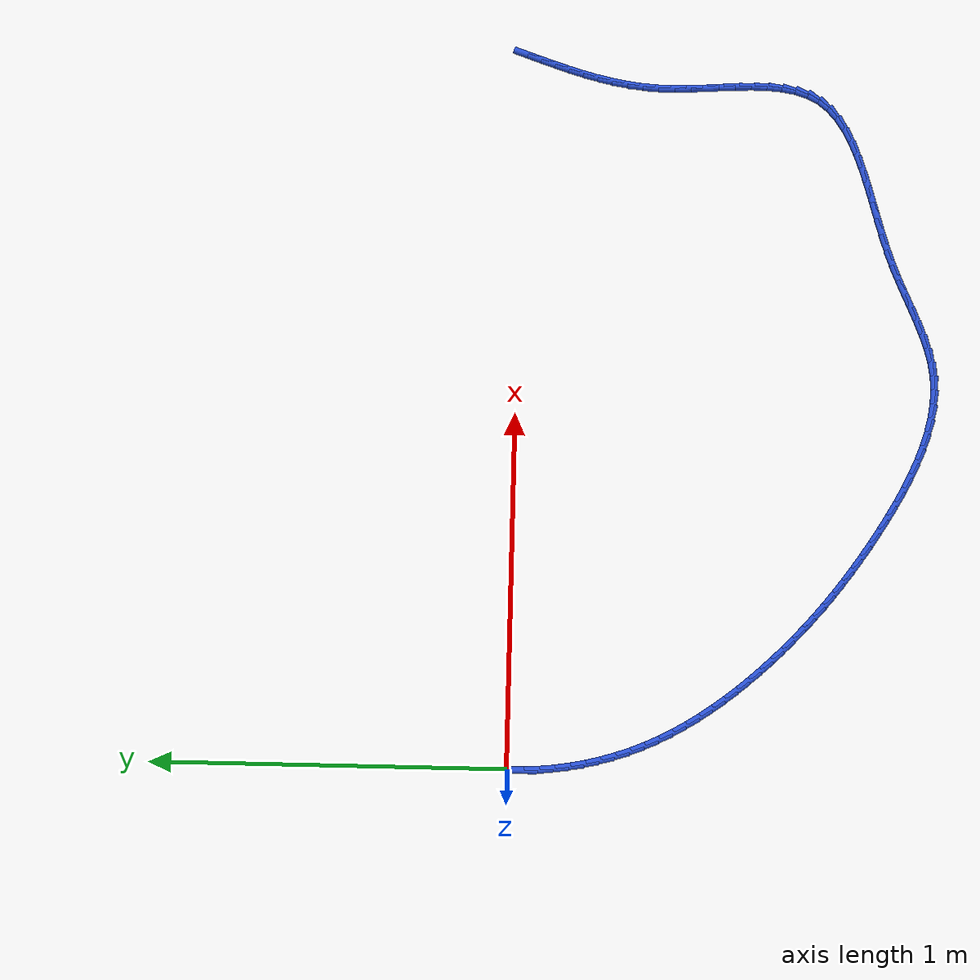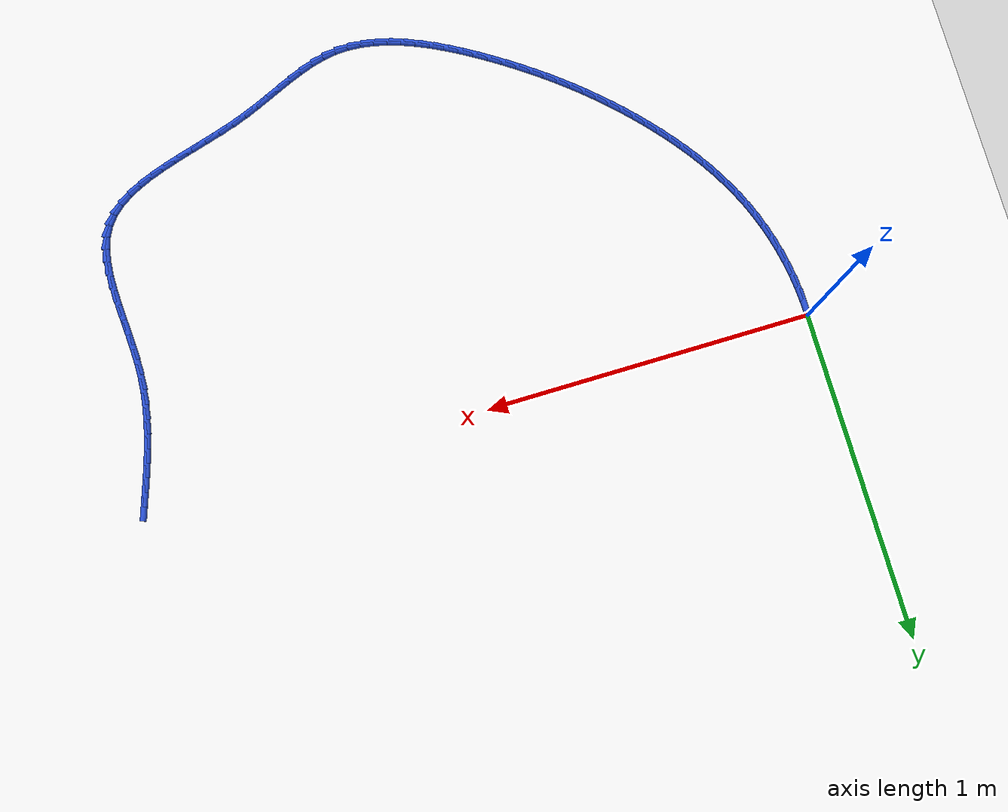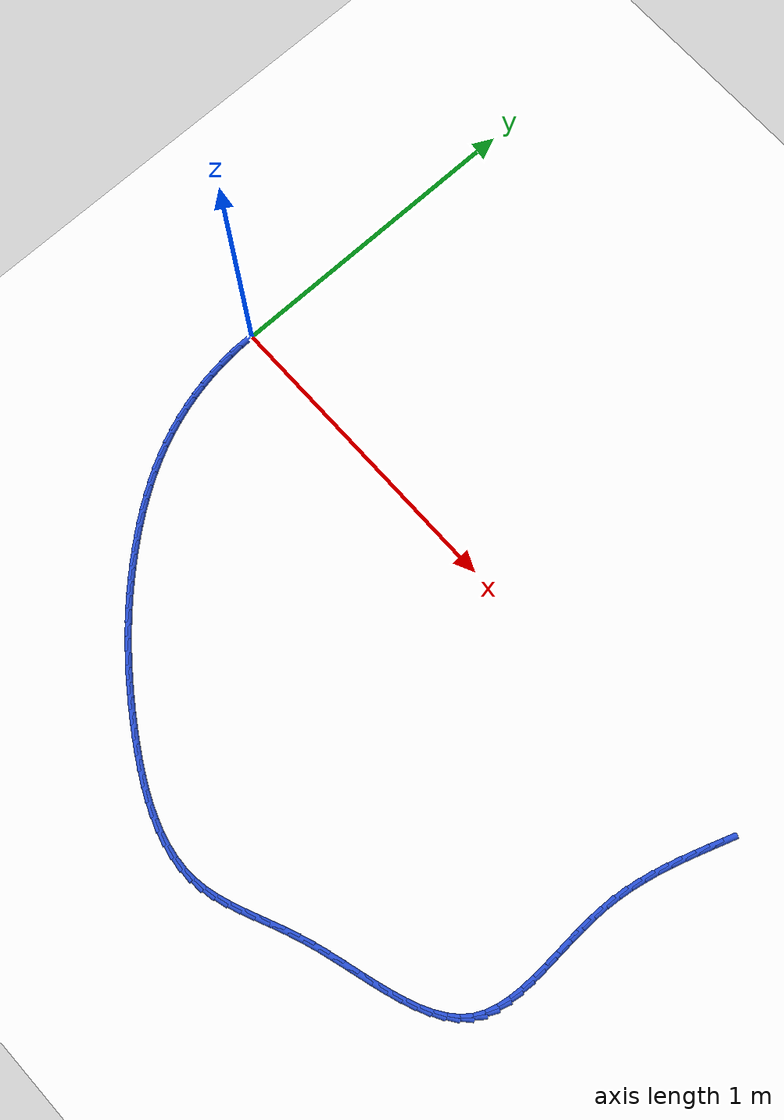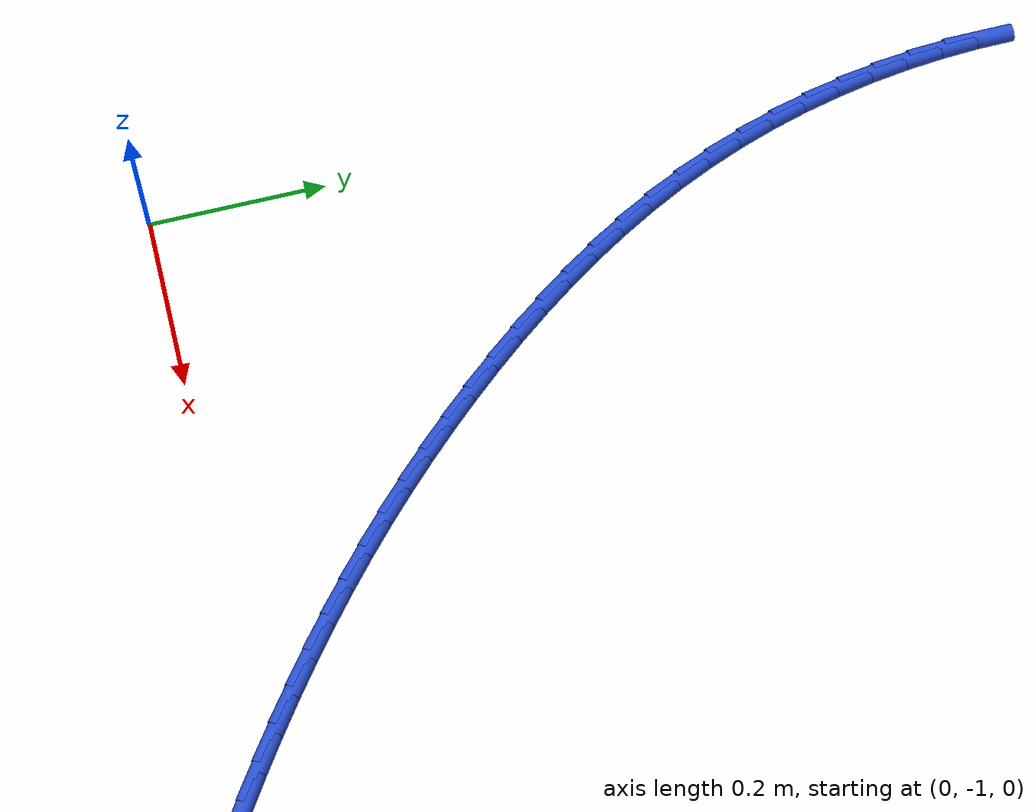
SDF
<sdf version="1.6">
 <world name="default">
  <model name="ground_plane">
   <static>1</static>
   <link name="link">
    <collision name="collision">
     <geometry><plane><normal>0 0 1</normal><size>100 100</size></plane></geometry>
     <surface><friction><ode><mu>100</mu><mu2>50</mu2></ode></friction></surface>
    </collision>
    <visual name="visual">
     <cast_shadows>0</cast_shadows>
     <geometry><plane><normal>0 0 1</normal><size>100 100</size></plane></geometry>
     <material>
      <script><uri>file://media/materials/scripts/gazebo.material</uri><name>Gazebo/WhiteGlow</name></script>
     </material>
    </visual>
   </link>
  </model>
  <model name="line">
   <link name="link_79">
    <pose>2.0497268249616245 -0.01200036930012709 0.01 0 1.57 1.2361086357804818</pose>
    <collision name="collision">
     <geometry><cylinder><radius>0.01</radius><length>0.08</length></cylinder></geometry>
    </collision>
    <visual name="visual">
     <material>
      <script><name>Gazebo/Blue</name><uri>file://media/materials/scripts/gazebo.material</uri></script>
     </material>
     <geometry><cylinder><radius>0.01</radius><length>0.08</length></cylinder></geometry>
    </visual>
   </link>
   <link name="link_80">
    <pose>2.0357409508427606 -0.05221612705626641 0.01 0 1.57 1.2421726312917123</pose>
    <collision name="collision">
     <geometry><cylinder><radius>0.01</radius><length>0.08</length></cylinder></geometry>
    </collision>
    <visual name="visual">
     <material>
      <script><name>Gazebo/Blue</name><uri>file://media/materials/scripts/gazebo.material</uri></script>
     </material>
     <geometry><cylinder><radius>0.01</radius><length>0.08</length></cylinder></geometry>
    </visual>
   </link>
   <link name="link_81">
    <pose>2.0219979243331703 -0.09251969786310299 0.01 0 1.57 1.2559934846705436</pose>
    <collision name="collision">
     <geometry><cylinder><radius>0.01</radius><length>0.08</length></cylinder></geometry>
    </collision>
    <visual name="visual">
     <material>
      <script><name>Gazebo/Blue</name><uri>file://media/materials/scripts/gazebo.material</uri></script>
     </material>
     <geometry><cylinder><radius>0.01</radius><length>0.08</length></cylinder></geometry>
    </visual>
   </link>
   <link name="link_82">
    <pose>2.0087993786013305 -0.1330518673805911 0.01 0 1.57 1.2775020403057513</pose>
    <collision name="collision">
     <geometry><cylinder><radius>0.01</radius><length>0.08</length></cylinder></geometry>
    </collision>
    <visual name="visual">
     <material>
      <script><name>Gazebo/Blue</name><uri>file://media/materials/scripts/gazebo.material</uri></script>
     </material>
     <geometry><cylinder><radius>0.01</radius><length>0.08</length></cylinder></geometry>
    </visual>
   </link>
   <link name="link_83">
    <pose>1.996446946815718 -0.1739534212686829 0.01 0 1.57 1.3065552213059184</pose>
    <collision name="collision">
     <geometry><cylinder><radius>0.01</radius><length>0.08</length></cylinder></geometry>
    </collision>
    <visual name="visual">
     <material>
      <script><name>Gazebo/Blue</name><uri>file://media/materials/scripts/gazebo.material</uri></script>
     </material>
     <geometry><cylinder><radius>0.01</radius><length>0.08</length></cylinder></geometry>
    </visual>
   </link>
   <link name="link_84">
    <pose>1.985242262144811 -0.2153651451873328 0.01 0 1.57 1.3429022885914026</pose>
    <collision name="collision">
     <geometry><cylinder><radius>0.01</radius><length>0.08</length></cylinder></geometry>
    </collision>
    <visual name="visual">
     <material>
      <script><name>Gazebo/Blue</name><uri>file://media/materials/scripts/gazebo.material</uri></script>
     </material>
     <geometry><cylinder><radius>0.01</radius><length>0.08</length></cylinder></geometry>
    </visual>
   </link>
   <link name="link_85">
    <pose>1.9754869577570868 -0.2574278247964944 0.01 0 1.57 1.386145318106704</pose>
    <collision name="collision">
     <geometry><cylinder><radius>0.01</radius><length>0.08</length></cylinder></geometry>
    </collision>
    <visual name="visual">
     <material>
      <script><name>Gazebo/Blue</name><uri>file://media/materials/scripts/gazebo.material</uri></script>
     </material>
     <geometry><cylinder><radius>0.01</radius><length>0.08</length></cylinder></geometry>
    </visual>
   </link>
   <link name="link_86">
    <pose>1.9674826668210235 -0.30028224575612134 0.01 0 1.57 1.4357014326984237</pose>
    <collision name="collision">
     <geometry><cylinder><radius>0.01</radius><length>0.08</length></cylinder></geometry>
    </collision>
    <visual name="visual">
     <material>
      <script><name>Gazebo/Blue</name><uri>file://media/materials/scripts/gazebo.material</uri></script>
     </material>
     <geometry><cylinder><radius>0.01</radius><length>0.08</length></cylinder></geometry>
    </visual>
   </link>
   <link name="link_87">
    <pose>1.9615310225050973 -0.34406919372616784 0.01 0 1.57 1.4907771042050664</pose>
    <collision name="collision">
     <geometry><cylinder><radius>0.01</radius><length>0.08</length></cylinder></geometry>
    </collision>
    <visual name="visual">
     <material>
      <script><name>Gazebo/Blue</name><uri>file://media/materials/scripts/gazebo.material</uri></script>
     </material>
     <geometry><cylinder><radius>0.01</radius><length>0.08</length></cylinder></geometry>
    </visual>
   </link>
   <link name="link_88">
    <pose>1.9579336579777877 -0.3889294543665863 0.01 0 1.57 1.5489056783955824</pose>
    <collision name="collision">
     <geometry><cylinder><radius>0.01</radius><length>0.08</length></cylinder></geometry>
    </collision>
    <visual name="visual">
     <material>
      <script><name>Gazebo/Blue</name><uri>file://media/materials/scripts/gazebo.material</uri></script>
     </material>
     <geometry><cylinder><radius>0.01</radius><length>0.08</length></cylinder></geometry>
    </visual>
   </link>
   <link name="link_89">
    <pose>1.9569257358877672 -0.43496560037629406 0.01 0 1.57 -1.5463260222264923</pose>
    <collision name="collision">
     <geometry><cylinder><radius>0.01</radius><length>0.08</length></cylinder></geometry>
    </collision>
    <visual name="visual">
     <material>
      <script><name>Gazebo/Blue</name><uri>file://media/materials/scripts/gazebo.material</uri></script>
     </material>
     <geometry><cylinder><radius>0.01</radius><length>0.08</length></cylinder></geometry>
    </visual>
   </link>
   <link name="link_90">
    <pose>1.958074370070317 -0.4818961526466922 0.01 0 1.57 -1.5183039544538628</pose>
    <collision name="collision">
     <geometry><cylinder><radius>0.01</radius><length>0.08</length></cylinder></geometry>
    </collision>
    <visual name="visual">
     <material>
      <script><name>Gazebo/Blue</name><uri>file://media/materials/scripts/gazebo.material</uri></script>
     </material>
     <geometry><cylinder><radius>0.01</radius><length>0.08</length></cylinder></geometry>
    </visual>
   </link>
   <link name="link_91">
    <pose>1.9605606758187923 -0.5292177269707027 0.01 0 1.57 -1.5073224955402336</pose>
    <collision name="collision">
     <geometry><cylinder><radius>0.01</radius><length>0.08</length></cylinder></geometry>
    </collision>
    <visual name="visual">
     <material>
      <script><name>Gazebo/Blue</name><uri>file://media/materials/scripts/gazebo.material</uri></script>
     </material>
     <geometry><cylinder><radius>0.01</radius><length>0.08</length></cylinder></geometry>
    </visual>
   </link>
   <link name="link_92">
    <pose>1.9635610850478649 -0.5764242467331305 0.01 0 1.57 -1.5130967395640473</pose>
    <collision name="collision">
     <geometry><cylinder><radius>0.01</radius><length>0.08</length></cylinder></geometry>
    </collision>
    <visual name="visual">
     <material>
      <script><name>Gazebo/Blue</name><uri>file://media/materials/scripts/gazebo.material</uri></script>
     </material>
     <geometry><cylinder><radius>0.01</radius><length>0.08</length></cylinder></geometry>
    </visual>
   </link>
   <link name="link_93">
    <pose>1.9662520296722064 -0.6230096353187775 0.01 0 1.57 -1.5365384132171003</pose>
    <collision name="collision">
     <geometry><cylinder><radius>0.01</radius><length>0.08</length></cylinder></geometry>
    </collision>
    <visual name="visual">
     <material>
      <script><name>Gazebo/Blue</name><uri>file://media/materials/scripts/gazebo.material</uri></script>
     </material>
     <geometry><cylinder><radius>0.01</radius><length>0.08</length></cylinder></geometry>
    </visual>
   </link>
   <link name="link_94">
    <pose>1.967809941606489 -0.6684678161124484 0.01 0 1.57 1.5616992638038028</pose>
    <collision name="collision">
     <geometry><cylinder><radius>0.01</radius><length>0.08</length></cylinder></geometry>
    </collision>
    <visual name="visual">
     <material>
      <script><name>Gazebo/Blue</name><uri>file://media/materials/scripts/gazebo.material</uri></script>
     </material>
     <geometry><cylinder><radius>0.01</radius><length>0.08</length></cylinder></geometry>
    </visual>
   </link>
   <link name="link_95">
    <pose>1.9674112527653838 -0.7122927124989471 0.01 0 1.57 1.4946855825788532</pose>
    <collision name="collision">
     <geometry><cylinder><radius>0.01</radius><length>0.08</length></cylinder></geometry>
    </collision>
    <visual name="visual">
     <material>
      <script><name>Gazebo/Blue</name><uri>file://media/materials/scripts/gazebo.material</uri></script>
     </material>
     <geometry><cylinder><radius>0.01</radius><length>0.08</length></cylinder></geometry>
    </visual>
   </link>
   <link name="link_96">
    <pose>1.964232395063564 -0.7539782478630784 0.01 0 1.57 1.3987792472565486</pose>
    <collision name="collision">
     <geometry><cylinder><radius>0.01</radius><length>0.08</length></cylinder></geometry>
    </collision>
    <visual name="visual">
     <material>
      <script><name>Gazebo/Blue</name><uri>file://media/materials/scripts/gazebo.material</uri></script>
     </material>
     <geometry><cylinder><radius>0.01</radius><length>0.08</length></cylinder></geometry>
    </visual>
   </link>
   <link name="link_97">
    <pose>1.9574498004157002 -0.7930183455896442 0.01 0 1.57 1.2680455643195303</pose>
    <collision name="collision">
     <geometry><cylinder><radius>0.01</radius><length>0.08</length></cylinder></geometry>
    </collision>
    <visual name="visual">
     <material>
      <script><name>Gazebo/Blue</name><uri>file://media/materials/scripts/gazebo.material</uri></script>
     </material>
     <geometry><cylinder><radius>0.01</radius><length>0.08</length></cylinder></geometry>
    </visual>
   </link>
   <link name="link_98">
    <pose>1.9462399007364652 -0.8289069290634496 0.01 0 1.57 1.0986265378931823</pose>
    <collision name="collision">
     <geometry><cylinder><radius>0.01</radius><length>0.08</length></cylinder></geometry>
    </collision>
    <visual name="visual">
     <material>
      <script><name>Gazebo/Blue</name><uri>file://media/materials/scripts/gazebo.material</uri></script>
     </material>
     <geometry><cylinder><radius>0.01</radius><length>0.08</length></cylinder></geometry>
    </visual>
   </link>
   <link name="link_99">
    <pose>1.9297794630309748 -0.8611381484666083 0.01 0 1.57 0.9054769072068747</pose>
    <collision name="collision">
     <geometry><cylinder><radius>0.01</radius><length>0.08</length></cylinder></geometry>
    </collision>
    <visual name="visual">
     <material>
      <script><name>Gazebo/Blue</name><uri>file://media/materials/scripts/gazebo.material</uri></script>
     </material>
     <geometry><cylinder><radius>0.01</radius><length>0.08</length></cylinder></geometry>
    </visual>
   </link>
   <link name="link_100">
    <pose>1.9075785222536619 -0.8894317177826276 0.01 0 1.57 0.7327894079717805</pose>
    <collision name="collision">
     <geometry><cylinder><radius>0.01</radius><length>0.08</length></cylinder></geometry>
    </collision>
    <visual name="visual">
     <material>
      <script><name>Gazebo/Blue</name><uri>file://media/materials/scripts/gazebo.material</uri></script>
     </material>
     <geometry><cylinder><radius>0.01</radius><length>0.08</length></cylinder></geometry>
    </visual>
   </link>
   <link name="link_101">
    <pose>1.8801055951007464 -0.9141560745992121 0.01 0 1.57 0.5930758423264373</pose>
    <collision name="collision">
     <geometry><cylinder><radius>0.01</radius><length>0.08</length></cylinder></geometry>
    </collision>
    <visual name="visual">
     <material>
      <script><name>Gazebo/Blue</name><uri>file://media/materials/scripts/gazebo.material</uri></script>
     </material>
     <geometry><cylinder><radius>0.01</radius><length>0.08</length></cylinder></geometry>
    </visual>
   </link>
   <link name="link_102">
    <pose>1.8480004560476513 -0.9357955679074086 0.01 0 1.57 0.4853507821232089</pose>
    <collision name="collision">
     <geometry><cylinder><radius>0.01</radius><length>0.08</length></cylinder></geometry>
    </collision>
    <visual name="visual">
     <material>
      <script><name>Gazebo/Blue</name><uri>file://media/materials/scripts/gazebo.material</uri></script>
     </material>
     <geometry><cylinder><radius>0.01</radius><length>0.08</length></cylinder></geometry>
    </visual>
   </link>
   <link name="link_103">
    <pose>1.8119028795698007 -0.9548345466982672 0.01 0 1.57 0.40522512327209276</pose>
    <collision name="collision">
     <geometry><cylinder><radius>0.01</radius><length>0.08</length></cylinder></geometry>
    </collision>
    <visual name="visual">
     <material>
      <script><name>Gazebo/Blue</name><uri>file://media/materials/scripts/gazebo.material</uri></script>
     </material>
     <geometry><cylinder><radius>0.01</radius><length>0.08</length></cylinder></geometry>
    </visual>
   </link>
   <link name="link_104">
    <pose>1.7724526401426157 -0.9717573599628356 0.01 0 1.57 0.3479108449966303</pose>
    <collision name="collision">
     <geometry><cylinder><radius>0.01</radius><length>0.08</length></cylinder></geometry>
    </collision>
    <visual name="visual">
     <material>
      <script><name>Gazebo/Blue</name><uri>file://media/materials/scripts/gazebo.material</uri></script>
     </material>
     <geometry><cylinder><radius>0.01</radius><length>0.08</length></cylinder></geometry>
    </visual>
   </link>
   <link name="link_105">
    <pose>1.7302895122415205 -0.9870483566921632 0.01 0 1.57 0.3094554530510217</pose>
    <collision name="collision">
     <geometry><cylinder><radius>0.01</radius><length>0.08</length></cylinder></geometry>
    </collision>
    <visual name="visual">
     <material>
      <script><name>Gazebo/Blue</name><uri>file://media/materials/scripts/gazebo.material</uri></script>
     </material>
     <geometry><cylinder><radius>0.01</radius><length>0.08</length></cylinder></geometry>
    </visual>
   </link>
   <link name="link_106">
    <pose>1.6860532703419366 -1.0011918858772981 0.01 0 1.57 0.28702215515041535</pose>
    <collision name="collision">
     <geometry><cylinder><radius>0.01</radius><length>0.08</length></cylinder></geometry>
    </collision>
    <visual name="visual">
     <material>
      <script><name>Gazebo/Blue</name><uri>file://media/materials/scripts/gazebo.material</uri></script>
     </material>
     <geometry><cylinder><radius>0.01</radius><length>0.08</length></cylinder></geometry>
    </visual>
   </link>
   <link name="link_107">
    <pose>1.640383688919288 -1.0146722965092885 0.01 0 1.57 0.2788260111481397</pose>
    <collision name="collision">
     <geometry><cylinder><radius>0.01</radius><length>0.08</length></cylinder></geometry>
    </collision>
    <visual name="visual">
     <material>
      <script><name>Gazebo/Blue</name><uri>file://media/materials/scripts/gazebo.material</uri></script>
     </material>
     <geometry><cylinder><radius>0.01</radius><length>0.08</length></cylinder></geometry>
    </visual>
   </link>
   <link name="link_108">
    <pose>1.5939205424489975 -1.0279739375791834 0.01 0 1.57 0.28400392856954687</pose>
    <collision name="collision">
     <geometry><cylinder><radius>0.01</radius><length>0.08</length></cylinder></geometry>
    </collision>
    <visual name="visual">
     <material>
      <script><name>Gazebo/Blue</name><uri>file://media/materials/scripts/gazebo.material</uri></script>
     </material>
     <geometry><cylinder><radius>0.01</radius><length>0.08</length></cylinder></geometry>
    </visual>
   </link>
   <link name="link_109">
    <pose>1.5473036054064877 -1.0415811580780314 0.01 0 1.57 0.3025140622665731</pose>
    <collision name="collision">
     <geometry><cylinder><radius>0.01</radius><length>0.08</length></cylinder></geometry>
    </collision>
    <visual name="visual">
     <material>
      <script><name>Gazebo/Blue</name><uri>file://media/materials/scripts/gazebo.material</uri></script>
     </material>
     <geometry><cylinder><radius>0.01</radius><length>0.08</length></cylinder></geometry>
    </visual>
   </link>
   <link name="link_110">
    <pose>1.501172652267181 -1.0559783069968807 0.01 0 1.57 0.3350819967153817</pose>
    <collision name="collision">
     <geometry><cylinder><radius>0.01</radius><length>0.08</length></cylinder></geometry>
    </collision>
    <visual name="visual">
     <material>
      <script><name>Gazebo/Blue</name><uri>file://media/materials/scripts/gazebo.material</uri></script>
     </material>
     <geometry><cylinder><radius>0.01</radius><length>0.08</length></cylinder></geometry>
    </visual>
   </link>
   <link name="link_111">
    <pose>1.456167440013068 -1.071649709277705 0.01 0 1.57 0.37684474431683196</pose>
    <collision name="collision">
     <geometry><cylinder><radius>0.01</radius><length>0.08</length></cylinder></geometry>
    </collision>
    <visual name="visual">
     <material>
      <script><name>Gazebo/Blue</name><uri>file://media/materials/scripts/gazebo.material</uri></script>
     </material>
     <geometry><cylinder><radius>0.01</radius><length>0.08</length></cylinder></geometry>
    </visual>
   </link>
   <link name="link_112">
    <pose>1.4127484055918673 -1.0888331698536686 0.01 0 1.57 0.4065545158587108</pose>
    <collision name="collision">
     <geometry><cylinder><radius>0.01</radius><length>0.08</length></cylinder></geometry>
    </collision>
    <visual name="visual">
     <material>
      <script><name>Gazebo/Blue</name><uri>file://media/materials/scripts/gazebo.material</uri></script>
     </material>
     <geometry><cylinder><radius>0.01</radius><length>0.08</length></cylinder></geometry>
    </visual>
   </link>
   <link name="link_113">
    <pose>1.3707551424612534 -1.106912989791207 0.01 0 1.57 0.41852942974158885</pose>
    <collision name="collision">
     <geometry><cylinder><radius>0.01</radius><length>0.08</length></cylinder></geometry>
    </collision>
    <visual name="visual">
     <material>
      <script><name>Gazebo/Blue</name><uri>file://media/materials/scripts/gazebo.material</uri></script>
     </material>
     <geometry><cylinder><radius>0.01</radius><length>0.08</length></cylinder></geometry>
    </visual>
   </link>
   <link name="link_114">
    <pose>1.3298929755044495 -1.1250888845900022 0.01 0 1.57 0.4115801712459198</pose>
    <collision name="collision">
     <geometry><cylinder><radius>0.01</radius><length>0.08</length></cylinder></geometry>
    </collision>
    <visual name="visual">
     <material>
      <script><name>Gazebo/Blue</name><uri>file://media/materials/scripts/gazebo.material</uri></script>
     </material>
     <geometry><cylinder><radius>0.01</radius><length>0.08</length></cylinder></geometry>
    </visual>
   </link>
   <link name="link_115">
    <pose>1.2898672296046791 -1.1425605697497383 0.01 0 1.57 0.3842907000123619</pose>
    <collision name="collision">
     <geometry><cylinder><radius>0.01</radius><length>0.08</length></cylinder></geometry>
    </collision>
    <visual name="visual">
     <material>
      <script><name>Gazebo/Blue</name><uri>file://media/materials/scripts/gazebo.material</uri></script>
     </material>
     <geometry><cylinder><radius>0.01</radius><length>0.08</length></cylinder></geometry>
    </visual>
   </link>
   <link name="link_116">
    <pose>1.2503832296451658 -1.158527760770097 0.01 0 1.57 0.3350729402093349</pose>
    <collision name="collision">
     <geometry><cylinder><radius>0.01</radius><length>0.08</length></cylinder></geometry>
    </collision>
    <visual name="visual">
     <material>
      <script><name>Gazebo/Blue</name><uri>file://media/materials/scripts/gazebo.material</uri></script>
     </material>
     <geometry><cylinder><radius>0.01</radius><length>0.08</length></cylinder></geometry>
    </visual>
   </link>
   <link name="link_117">
    <pose>1.2111463005091336 -1.1721901731507611 0.01 0 1.57 0.26253763862229756</pose>
    <collision name="collision">
     <geometry><cylinder><radius>0.01</radius><length>0.08</length></cylinder></geometry>
    </collision>
    <visual name="visual">
     <material>
      <script><name>Gazebo/Blue</name><uri>file://media/materials/scripts/gazebo.material</uri></script>
     </material>
     <geometry><cylinder><radius>0.01</radius><length>0.08</length></cylinder></geometry>
    </visual>
   </link>
   <link name="link_118">
    <pose>1.1718617670798057 -1.1827475223914132 0.01 0 1.57 0.16631554159417422</pose>
    <collision name="collision">
     <geometry><cylinder><radius>0.01</radius><length>0.08</length></cylinder></geometry>
    </collision>
    <visual name="visual">
     <material>
      <script><name>Gazebo/Blue</name><uri>file://media/materials/scripts/gazebo.material</uri></script>
     </material>
     <geometry><cylinder><radius>0.01</radius><length>0.08</length></cylinder></geometry>
    </visual>
   </link>
   <link name="link_119">
    <pose>1.1322349542404058 -1.1893995239917365 0.01 0 1.57 0.05184714131324039</pose>
    <collision name="collision">
     <geometry><cylinder><radius>0.01</radius><length>0.08</length></cylinder></geometry>
    </collision>
    <visual name="visual">
     <material>
      <script><name>Gazebo/Blue</name><uri>file://media/materials/scripts/gazebo.material</uri></script>
     </material>
     <geometry><cylinder><radius>0.01</radius><length>0.08</length></cylinder></geometry>
    </visual>
   </link>
   <link name="link_120">
    <pose>1.0920232943388382 -1.1914862537378008 0.01 0 1.57 -0.05762549212249572</pose>
    <collision name="collision">
     <geometry><cylinder><radius>0.01</radius><length>0.08</length></cylinder></geometry>
    </collision>
    <visual name="visual">
     <material>
      <script><name>Gazebo/Blue</name><uri>file://media/materials/scripts/gazebo.material</uri></script>
     </material>
     <geometry><cylinder><radius>0.01</radius><length>0.08</length></cylinder></geometry>
    </visual>
   </link>
   <link name="link_121">
    <pose>1.0512766909245692 -1.1891356081600293 0.01 0 1.57 -0.15402195144967754</pose>
    <collision name="collision">
     <geometry><cylinder><radius>0.01</radius><length>0.08</length></cylinder></geometry>
    </collision>
    <visual name="visual">
     <material>
      <script><name>Gazebo/Blue</name><uri>file://media/materials/scripts/gazebo.material</uri></script>
     </material>
     <geometry><cylinder><radius>0.01</radius><length>0.08</length></cylinder></geometry>
    </visual>
   </link>
   <link name="link_122">
    <pose>1.0101470194503865 -1.1827501623908625 0.01 0 1.57 -0.23761983702317604</pose>
    <collision name="collision">
     <geometry><cylinder><radius>0.01</radius><length>0.08</length></cylinder></geometry>
    </collision>
    <visual name="visual">
     <material>
      <script><name>Gazebo/Blue</name><uri>file://media/materials/scripts/gazebo.material</uri></script>
     </material>
     <geometry><cylinder><radius>0.01</radius><length>0.08</length></cylinder></geometry>
    </visual>
   </link>
   <link name="link_123">
    <pose>0.968786260261987 -1.1727327741095785 0.01 0 1.57 -0.30939023486036876</pose>
    <collision name="collision">
     <geometry><cylinder><radius>0.01</radius><length>0.08</length></cylinder></geometry>
    </collision>
    <visual name="visual">
     <material>
      <script><name>Gazebo/Blue</name><uri>file://media/materials/scripts/gazebo.material</uri></script>
     </material>
     <geometry><cylinder><radius>0.01</radius><length>0.08</length></cylinder></geometry>
    </visual>
   </link>
   <link name="link_124">
    <pose>0.9273463937050702 -1.1594863009954544 0.01 0 1.57 -0.37058753692792934</pose>
    <collision name="collision">
     <geometry><cylinder><radius>0.01</radius><length>0.08</length></cylinder></geometry>
    </collision>
    <visual name="visual">
     <material>
      <script><name>Gazebo/Blue</name><uri>file://media/materials/scripts/gazebo.material</uri></script>
     </material>
     <geometry><cylinder><radius>0.01</radius><length>0.08</length></cylinder></geometry>
    </visual>
   </link>
   <link name="link_125">
    <pose>0.8859794001253343 -1.143413600727767 0.01 0 1.57 -0.4224921907969186</pose>
    <collision name="collision">
     <geometry><cylinder><radius>0.01</radius><length>0.08</length></cylinder></geometry>
    </collision>
    <visual name="visual">
     <material>
      <script><name>Gazebo/Blue</name><uri>file://media/materials/scripts/gazebo.material</uri></script>
     </material>
     <geometry><cylinder><radius>0.01</radius><length>0.08</length></cylinder></geometry>
    </visual>
   </link>
   <link name="link_126">
    <pose>0.844837259868477 -1.1249175309857937 0.01 0 1.57 -0.4662724324590634</pose>
    <collision name="collision">
     <geometry><cylinder><radius>0.01</radius><length>0.08</length></cylinder></geometry>
    </collision>
    <visual name="visual">
     <material>
      <script><name>Gazebo/Blue</name><uri>file://media/materials/scripts/gazebo.material</uri></script>
     </material>
     <geometry><cylinder><radius>0.01</radius><length>0.08</length></cylinder></geometry>
    </visual>
   </link>
   <link name="link_127">
    <pose>0.8040719532801989 -1.1044009494488127 0.01 0 1.57 -0.5029226749881721</pose>
    <collision name="collision">
     <geometry><cylinder><radius>0.01</radius><length>0.08</length></cylinder></geometry>
    </collision>
    <visual name="visual">
     <material>
      <script><name>Gazebo/Blue</name><uri>file://media/materials/scripts/gazebo.material</uri></script>
     </material>
     <geometry><cylinder><radius>0.01</radius><length>0.08</length></cylinder></geometry>
    </visual>
   </link>
   <link name="link_128">
    <pose>0.7638354607061972 -1.0822667137961002 0.01 0 1.57 -0.5332435570540376</pose>
    <collision name="collision">
     <geometry><cylinder><radius>0.01</radius><length>0.08</length></cylinder></geometry>
    </collision>
    <visual name="visual">
     <material>
      <script><name>Gazebo/Blue</name><uri>file://media/materials/scripts/gazebo.material</uri></script>
     </material>
     <geometry><cylinder><radius>0.01</radius><length>0.08</length></cylinder></geometry>
    </visual>
   </link>
   <link name="link_129">
    <pose>0.7242797624921711 -1.0589176817069343 0.01 0 1.57 -0.5578402358422295</pose>
    <collision name="collision">
     <geometry><cylinder><radius>0.01</radius><length>0.08</length></cylinder></geometry>
    </collision>
    <visual name="visual">
     <material>
      <script><name>Gazebo/Blue</name><uri>file://media/materials/scripts/gazebo.material</uri></script>
     </material>
     <geometry><cylinder><radius>0.01</radius><length>0.08</length></cylinder></geometry>
    </visual>
   </link>
   <link name="link_130">
    <pose>0.685556838983819 -1.034756710860592 0.01 0 1.57 -0.5778277313078821</pose>
    <collision name="collision">
     <geometry><cylinder><radius>0.01</radius><length>0.08</length></cylinder></geometry>
    </collision>
    <visual name="visual">
     <material>
      <script><name>Gazebo/Blue</name><uri>file://media/materials/scripts/gazebo.material</uri></script>
     </material>
     <geometry><cylinder><radius>0.01</radius><length>0.08</length></cylinder></geometry>
    </visual>
   </link>
   <link name="link_131">
    <pose>0.6477971692041742 -1.0101348328217734 0.01 0 1.57 -0.5973405971663324</pose>
    <collision name="collision">
     <geometry><cylinder><radius>0.01</radius><length>0.08</length></cylinder></geometry>
    </collision>
    <visual name="visual">
     <material>
      <script><name>Gazebo/Blue</name><uri>file://media/materials/scripts/gazebo.material</uri></script>
     </material>
     <geometry><cylinder><radius>0.01</radius><length>0.08</length></cylinder></geometry>
    </visual>
   </link>
   <link name="link_132">
    <pose>0.6110099262151376 -0.9851106870666252 0.01 0 1.57 -0.6177402935241718</pose>
    <collision name="collision">
     <geometry><cylinder><radius>0.01</radius><length>0.08</length></cylinder></geometry>
    </collision>
    <visual name="visual">
     <material>
      <script><name>Gazebo/Blue</name><uri>file://media/materials/scripts/gazebo.material</uri></script>
     </material>
     <geometry><cylinder><radius>0.01</radius><length>0.08</length></cylinder></geometry>
    </visual>
   </link>
   <link name="link_133">
    <pose>0.5751617819496699 -0.9596404696815363 0.01 0 1.57 -0.6389688836511638</pose>
    <collision name="collision">
     <geometry><cylinder><radius>0.01</radius><length>0.08</length></cylinder></geometry>
    </collision>
    <visual name="visual">
     <material>
      <script><name>Gazebo/Blue</name><uri>file://media/materials/scripts/gazebo.material</uri></script>
     </material>
     <geometry><cylinder><radius>0.01</radius><length>0.08</length></cylinder></geometry>
    </visual>
   </link>
   <link name="link_134">
    <pose>0.5402193628287019 -0.9336802670521235 0.01 0 1.57 -0.6609546493605363</pose>
    <collision name="collision">
     <geometry><cylinder><radius>0.01</radius><length>0.08</length></cylinder></geometry>
    </collision>
    <visual name="visual">
     <material>
      <script><name>Gazebo/Blue</name><uri>file://media/materials/scripts/gazebo.material</uri></script>
     </material>
     <geometry><cylinder><radius>0.01</radius><length>0.08</length></cylinder></geometry>
    </visual>
   </link>
   <link name="link_135">
    <pose>0.5061492952731639 -0.9071861655640038 0.01 0 1.57 -0.683613993094037</pose>
    <collision name="collision">
     <geometry><cylinder><radius>0.01</radius><length>0.08</length></cylinder></geometry>
    </collision>
    <visual name="visual">
     <material>
      <script><name>Gazebo/Blue</name><uri>file://media/materials/scripts/gazebo.material</uri></script>
     </material>
     <geometry><cylinder><radius>0.01</radius><length>0.08</length></cylinder></geometry>
    </visual>
   </link>
   <link name="link_136">
    <pose>0.4729182057039861 -0.8801142516027931 0.01 0 1.57 -0.70685227436735</pose>
    <collision name="collision">
     <geometry><cylinder><radius>0.01</radius><length>0.08</length></cylinder></geometry>
    </collision>
    <visual name="visual">
     <material>
      <script><name>Gazebo/Blue</name><uri>file://media/materials/scripts/gazebo.material</uri></script>
     </material>
     <geometry><cylinder><radius>0.01</radius><length>0.08</length></cylinder></geometry>
    </visual>
   </link>
   <link name="link_137">
    <pose>0.44049272054210065 -0.85242061155411 0.01 0 1.57 -0.7305650743467734</pose>
    <collision name="collision">
     <geometry><cylinder><radius>0.01</radius><length>0.08</length></cylinder></geometry>
    </collision>
    <visual name="visual">
     <material>
      <script><name>Gazebo/Blue</name><uri>file://media/materials/scripts/gazebo.material</uri></script>
     </material>
     <geometry><cylinder><radius>0.01</radius><length>0.08</length></cylinder></geometry>
    </visual>
   </link>
   <link name="link_138">
    <pose>0.4088394662084375 -0.8240613318035703 0.01 0 1.57 -0.7546398670581096</pose>
    <collision name="collision">
     <geometry><cylinder><radius>0.01</radius><length>0.08</length></cylinder></geometry>
    </collision>
    <visual name="visual">
     <material>
      <script><name>Gazebo/Blue</name><uri>file://media/materials/scripts/gazebo.material</uri></script>
     </material>
     <geometry><cylinder><radius>0.01</radius><length>0.08</length></cylinder></geometry>
    </visual>
   </link>
   <link name="link_139">
    <pose>0.3779250691239275 -0.7949924987367916 0.01 0 1.57 -0.7789580458303992</pose>
    <collision name="collision">
     <geometry><cylinder><radius>0.01</radius><length>0.08</length></cylinder></geometry>
    </collision>
    <visual name="visual">
     <material>
      <script><name>Gazebo/Blue</name><uri>file://media/materials/scripts/gazebo.material</uri></script>
     </material>
     <geometry><cylinder><radius>0.01</radius><length>0.08</length></cylinder></geometry>
    </visual>
   </link>
   <link name="link_140">
    <pose>0.3477161557095012 -0.7651701987393901 0.01 0 1.57 -0.8033972253162687</pose>
    <collision name="collision">
     <geometry><cylinder><radius>0.01</radius><length>0.08</length></cylinder></geometry>
    </collision>
    <visual name="visual">
     <material>
      <script><name>Gazebo/Blue</name><uri>file://media/materials/scripts/gazebo.material</uri></script>
     </material>
     <geometry><cylinder><radius>0.01</radius><length>0.08</length></cylinder></geometry>
    </visual>
   </link>
   <link name="link_141">
    <pose>0.3181793523860891 -0.7345505181969828 0.01 0 1.57 -0.8278345228896987</pose>
    <collision name="collision">
     <geometry><cylinder><radius>0.01</radius><length>0.08</length></cylinder></geometry>
    </collision>
    <visual name="visual">
     <material>
      <script><name>Gazebo/Blue</name><uri>file://media/materials/scripts/gazebo.material</uri></script>
     </material>
     <geometry><cylinder><radius>0.01</radius><length>0.08</length></cylinder></geometry>
    </visual>
   </link>
   <link name="link_142">
    <pose>0.2892813453032321 -0.703089557583985 0.01 0 1.57 -0.8527351970703414</pose>
    <collision name="collision">
     <geometry><cylinder><radius>0.01</radius><length>0.08</length></cylinder></geometry>
    </collision>
    <visual name="visual">
     <material>
      <script><name>Gazebo/Blue</name><uri>file://media/materials/scripts/gazebo.material</uri></script>
     </material>
     <geometry><cylinder><radius>0.01</radius><length>0.08</length></cylinder></geometry>
    </visual>
   </link>
   <link name="link_143">
    <pose>0.2610310582924859 -0.6707533804085966 0.01 0 1.57 -0.8796976049809563</pose>
    <collision name="collision">
     <geometry><cylinder><radius>0.01</radius><length>0.08</length></cylinder></geometry>
    </collision>
    <visual name="visual">
     <material>
      <script><name>Gazebo/Blue</name><uri>file://media/materials/scripts/gazebo.material</uri></script>
     </material>
     <geometry><cylinder><radius>0.01</radius><length>0.08</length></cylinder></geometry>
    </visual>
   </link>
   <link name="link_144">
    <pose>0.23355371389313972 -0.6375354827439487 0.01 0 1.57 -0.909095871235635</pose>
    <collision name="collision">
     <geometry><cylinder><radius>0.01</radius><length>0.08</length></cylinder></geometry>
    </collision>
    <visual name="visual">
     <material>
      <script><name>Gazebo/Blue</name><uri>file://media/materials/scripts/gazebo.material</uri></script>
     </material>
     <geometry><cylinder><radius>0.01</radius><length>0.08</length></cylinder></geometry>
    </visual>
   </link>
   <link name="link_145">
    <pose>0.20699437847730812 -0.6034340414308531 0.01 0 1.57 -0.9410415288480846</pose>
    <collision name="collision">
     <geometry><cylinder><radius>0.01</radius><length>0.08</length></cylinder></geometry>
    </collision>
    <visual name="visual">
     <material>
      <script><name>Gazebo/Blue</name><uri>file://media/materials/scripts/gazebo.material</uri></script>
     </material>
     <geometry><cylinder><radius>0.01</radius><length>0.08</length></cylinder></geometry>
    </visual>
   </link>
   <link name="link_146">
    <pose>0.1814981184171053 -0.5684472333101207 0.01 0 1.57 -0.9756467804929294</pose>
    <collision name="collision">
     <geometry><cylinder><radius>0.01</radius><length>0.08</length></cylinder></geometry>
    </collision>
    <visual name="visual">
     <material>
      <script><name>Gazebo/Blue</name><uri>file://media/materials/scripts/gazebo.material</uri></script>
     </material>
     <geometry><cylinder><radius>0.01</radius><length>0.08</length></cylinder></geometry>
    </visual>
   </link>
   <link name="link_147">
    <pose>0.15721000008464672 -0.532573235222564 0.01 0 1.57 -1.013018419660956</pose>
    <collision name="collision">
     <geometry><cylinder><radius>0.01</radius><length>0.08</length></cylinder></geometry>
    </collision>
    <visual name="visual">
     <material>
      <script><name>Gazebo/Blue</name><uri>file://media/materials/scripts/gazebo.material</uri></script>
     </material>
     <geometry><cylinder><radius>0.01</radius><length>0.08</length></cylinder></geometry>
    </visual>
   </link>
   <link name="link_148">
    <pose>0.13427508985204653 -0.49581022400899427 0.01 0 1.57 -1.0532502744761933</pose>
    <collision name="collision">
     <geometry><cylinder><radius>0.01</radius><length>0.08</length></cylinder></geometry>
    </collision>
    <visual name="visual">
     <material>
      <script><name>Gazebo/Blue</name><uri>file://media/materials/scripts/gazebo.material</uri></script>
     </material>
     <geometry><cylinder><radius>0.01</radius><length>0.08</length></cylinder></geometry>
    </visual>
   </link>
   <link name="link_149">
    <pose>0.11283845409141935 -0.4581563765102231 0.01 0 1.57 -1.0964140438059893</pose>
    <collision name="collision">
     <geometry><cylinder><radius>0.01</radius><length>0.08</length></cylinder></geometry>
    </collision>
    <visual name="visual">
     <material>
      <script><name>Gazebo/Blue</name><uri>file://media/materials/scripts/gazebo.material</uri></script>
     </material>
     <geometry><cylinder><radius>0.01</radius><length>0.08</length></cylinder></geometry>
    </visual>
   </link>
   <link name="link_150">
    <pose>0.09304515917487971 -0.4196098695670621 0.01 0 1.57 -1.1425483970779173</pose>
    <collision name="collision">
     <geometry><cylinder><radius>0.01</radius><length>0.08</length></cylinder></geometry>
    </collision>
    <visual name="visual">
     <material>
      <script><name>Gazebo/Blue</name><uri>file://media/materials/scripts/gazebo.material</uri></script>
     </material>
     <geometry><cylinder><radius>0.01</radius><length>0.08</length></cylinder></geometry>
    </visual>
   </link>
   <link name="link_151">
    <pose>0.07504026560321453 -0.38016888519763625 0.01 0 1.57 -1.1908354250799638</pose>
    <collision name="collision">
     <geometry><cylinder><radius>0.01</radius><length>0.08</length></cylinder></geometry>
    </collision>
    <visual name="visual">
     <material>
      <script><name>Gazebo/Blue</name><uri>file://media/materials/scripts/gazebo.material</uri></script>
     </material>
     <geometry><cylinder><radius>0.01</radius><length>0.08</length></cylinder></geometry>
    </visual>
   </link>
   <link name="link_152">
    <pose>0.058940758605539566 -0.339856362088236 0.01 0 1.57 -1.2386294963635627</pose>
    <collision name="collision">
     <geometry><cylinder><radius>0.01</radius><length>0.08</length></cylinder></geometry>
    </collision>
    <visual name="visual">
     <material>
      <script><name>Gazebo/Blue</name><uri>file://media/materials/scripts/gazebo.material</uri></script>
     </material>
     <geometry><cylinder><radius>0.01</radius><length>0.08</length></cylinder></geometry>
    </visual>
   </link>
   <link name="link_153">
    <pose>0.044770614030021263 -0.29877725424479085 0.01 0 1.57 -1.2855316480570331</pose>
    <collision name="collision">
     <geometry><cylinder><radius>0.01</radius><length>0.08</length></cylinder></geometry>
    </collision>
    <visual name="visual">
     <material>
      <script><name>Gazebo/Blue</name><uri>file://media/materials/scripts/gazebo.material</uri></script>
     </material>
     <geometry><cylinder><radius>0.01</radius><length>0.08</length></cylinder></geometry>
    </visual>
   </link>
   <link name="link_154">
    <pose>0.03253457295020981 -0.25705347682459345 0.01 0 1.57 -1.331717451233829</pose>
    <collision name="collision">
     <geometry><cylinder><radius>0.01</radius><length>0.08</length></cylinder></geometry>
    </collision>
    <visual name="visual">
     <material>
      <script><name>Gazebo/Blue</name><uri>file://media/materials/scripts/gazebo.material</uri></script>
     </material>
     <geometry><cylinder><radius>0.01</radius><length>0.08</length></cylinder></geometry>
    </visual>
   </link>
   <link name="link_155">
    <pose>0.022237376439655506 -0.2148069449849364 0.01 0 1.57 -1.3773689527703137</pose>
    <collision name="collision">
     <geometry><cylinder><radius>0.01</radius><length>0.08</length></cylinder></geometry>
    </collision>
    <visual name="visual">
     <material>
      <script><name>Gazebo/Blue</name><uri>file://media/materials/scripts/gazebo.material</uri></script>
     </material>
     <geometry><cylinder><radius>0.01</radius><length>0.08</length></cylinder></geometry>
    </visual>
   </link>
   <link name="link_156">
    <pose>0.01388376557190845 -0.17215957388311168 0.01 0 1.57 -1.4226733501711757</pose>
    <collision name="collision">
     <geometry><cylinder><radius>0.01</radius><length>0.08</length></cylinder></geometry>
    </collision>
    <visual name="visual">
     <material>
      <script><name>Gazebo/Blue</name><uri>file://media/materials/scripts/gazebo.material</uri></script>
     </material>
     <geometry><cylinder><radius>0.01</radius><length>0.08</length></cylinder></geometry>
    </visual>
   </link>
   <link name="link_157">
    <pose>0.007478481420519223 -0.1292332786764135 0.01 0 1.57 -1.4678221311138835</pose>
    <collision name="collision">
     <geometry><cylinder><radius>0.01</radius><length>0.08</length></cylinder></geometry>
    </collision>
    <visual name="visual">
     <material>
      <script><name>Gazebo/Blue</name><uri>file://media/materials/scripts/gazebo.material</uri></script>
     </material>
     <geometry><cylinder><radius>0.01</radius><length>0.08</length></cylinder></geometry>
    </visual>
   </link>
   <link name="link_158">
    <pose>0.0030262650590379032 -0.08614997452213366 0.01 0 1.57 -1.51301054255196</pose>
    <collision name="collision">
     <geometry><cylinder><radius>0.01</radius><length>0.08</length></cylinder></geometry>
    </collision>
    <visual name="visual">
     <material>
      <script><name>Gazebo/Blue</name><uri>file://media/materials/scripts/gazebo.material</uri></script>
     </material>
     <geometry><cylinder><radius>0.01</radius><length>0.08</length></cylinder></geometry>
    </visual>
   </link>
   <link name="link_159">
    <pose>0.0005318575610147366 -0.043031576577564866 0.01 0 1.57 -1.558437251827118</pose>
    <collision name="collision">
     <geometry><cylinder><radius>0.01</radius><length>0.08</length></cylinder></geometry>
    </collision>
    <visual name="visual">
     <material>
      <script><name>Gazebo/Blue</name><uri>file://media/materials/scripts/gazebo.material</uri></script>
     </material>
     <geometry><cylinder><radius>0.01</radius><length>0.08</length></cylinder></geometry>
    </visual>
   </link>
  </model>
 </world>
</sdf>
